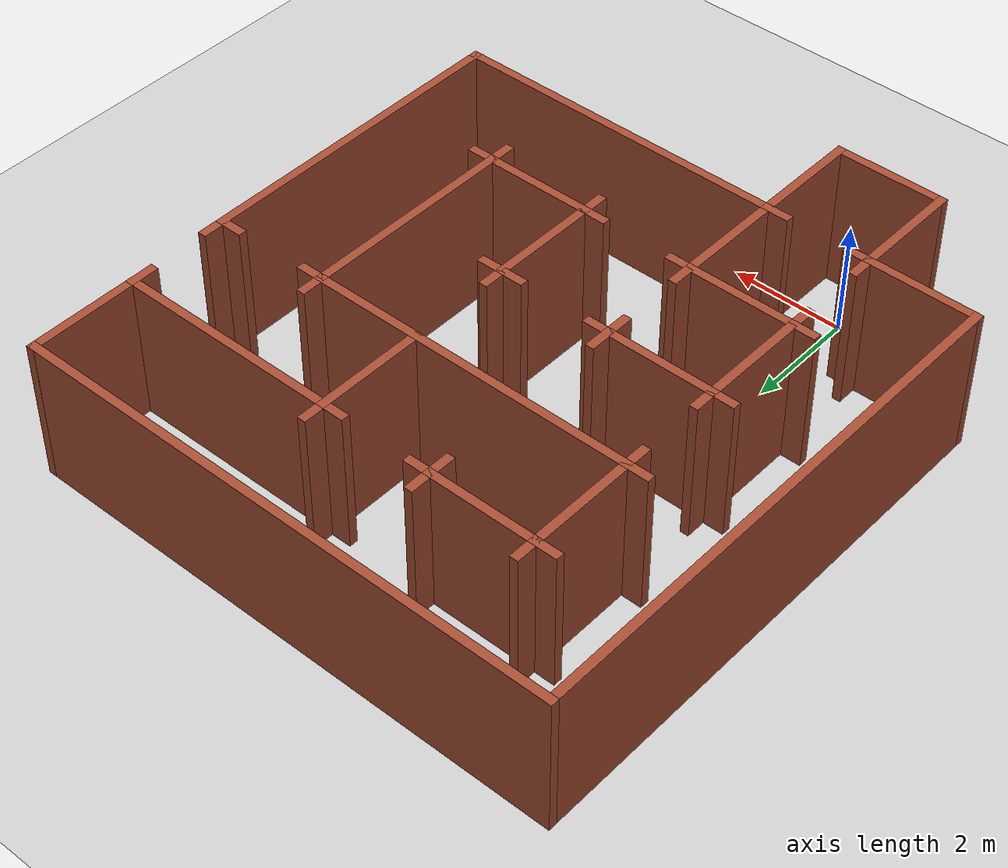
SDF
<?xml version="1.0"?>
<sdf version="1.6">
  <world name="default">

    <include>
      <uri>model://ground_plane</uri>
    </include>

    <include>
      <uri>model://sun</uri>
    </include>

    <scene>
      <shadows>false</shadows>
    </scene>

    <gui fullscreen='0'>
      <camera name='user_camera'>
        <pose frame=''>0.319654 -0.235002 9.29441 0 1.5138 0.009599</pose>
        <view_controller>orbit</view_controller>
        <projection_type>perspective</projection_type>
      </camera>
    </gui>

    <physics type="ode">
      <real_time_update_rate>1000.0</real_time_update_rate>
      <max_step_size>0.001</max_step_size>
      <real_time_factor>1</real_time_factor>
      <ode>
        <solver>
          <type>quick</type>
          <iters>150</iters>
          <precon_iters>0</precon_iters>
          <sor>1.400000</sor>
          <use_dynamic_moi_rescaling>1</use_dynamic_moi_rescaling>
        </solver>
        <constraints>
          <cfm>0.00001</cfm>
          <erp>0.2</erp>
          <contact_max_correcting_vel>2000.000000</contact_max_correcting_vel>
          <contact_surface_layer>0.01000</contact_surface_layer>
        </constraints>
      </ode>
    </physics>

    <model name="turtlebot3_enclosed_maze">
      <static>1</static>
      <include>
        <uri>model://turtlebot3_enclosed_maze</uri>
      </include>
    </model>

  </world>
</sdf>

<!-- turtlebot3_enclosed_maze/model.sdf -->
<sdf version='1.7'>
  <model name='Enclosed_Maze'>
    <pose>2 4.62209 0 0 -0 0</pose>
    <link name='Wall_109'>
      <collision name='Wall_109_Collision'>
        <geometry>
          <box>
            <size>0.5 0.15 2.5</size>
          </box>
        </geometry>
        <pose>0 0 1.25 0 -0 0</pose>
      </collision>
      <visual name='Wall_109_Visual'>
        <pose>0 0 1.25 0 -0 0</pose>
        <geometry>
          <box>
            <size>0.5 0.15 2.5</size>
          </box>
        </geometry>
        <material>
          <script>
            <uri>file://media/materials/scripts/gazebo.material</uri>
            <name>Gazebo/Bricks</name>
          </script>
          <ambient>1 1 1 1</ambient>
        </material>
        <meta>
          <layer>0</layer>
        </meta>
      </visual>
      <pose>-2.925 0.177915 0 0 -0 1.5708</pose>
    </link>
    <link name='Wall_113'>
      <collision name='Wall_113_Collision'>
        <geometry>
          <box>
            <size>0.5 0.15 2.5</size>
          </box>
        </geometry>
        <pose>0 0 1.25 0 -0 0</pose>
      </collision>
      <visual name='Wall_113_Visual'>
        <pose>0 0 1.25 0 -0 0</pose>
        <geometry>
          <box>
            <size>0.5 0.15 2.5</size>
          </box>
        </geometry>
        <material>
          <script>
            <uri>file://media/materials/scripts/gazebo.material</uri>
            <name>Gazebo/Bricks</name>
          </script>
          <ambient>1 1 1 1</ambient>
        </material>
        <meta>
          <layer>0</layer>
        </meta>
      </visual>
      <pose>-1.075 0.177915 0 0 -0 1.5708</pose>
    </link>
    <link name='Wall_115'>
      <collision name='Wall_115_Collision'>
        <geometry>
          <box>
            <size>0.5 0.15 2.5</size>
          </box>
        </geometry>
        <pose>0 0 1.25 0 -0 0</pose>
      </collision>
      <visual name='Wall_115_Visual'>
        <pose>0 0 1.25 0 -0 0</pose>
        <geometry>
          <box>
            <size>0.5 0.15 2.5</size>
          </box>
        </geometry>
        <material>
          <script>
            <uri>file://media/materials/scripts/gazebo.material</uri>
            <name>Gazebo/Bricks</name>
          </script>
          <ambient>1 1 1 1</ambient>
        </material>
        <meta>
          <layer>0</layer>
        </meta>
      </visual>
      <pose>-0.9 0.002915 0 0 -0 0</pose>
    </link>
    <link name='Wall_117'>
      <collision name='Wall_117_Collision'>
        <geometry>
          <box>
            <size>0.5 0.15 2.5</size>
          </box>
        </geometry>
        <pose>0 0 1.25 0 -0 0</pose>
      </collision>
      <visual name='Wall_117_Visual'>
        <pose>0 0 1.25 0 -0 0</pose>
        <geometry>
          <box>
            <size>0.5 0.15 2.5</size>
          </box>
        </geometry>
        <material>
          <script>
            <uri>file://media/materials/scripts/gazebo.material</uri>
            <name>Gazebo/Bricks</name>
          </script>
          <ambient>1 1 1 1</ambient>
        </material>
        <meta>
          <layer>0</layer>
        </meta>
      </visual>
      <pose>-1.075 -0.172085 0 0 -0 -1.5708</pose>
    </link>
    <link name='Wall_119'>
      <collision name='Wall_119_Collision'>
        <geometry>
          <box>
            <size>0.5 0.15 2.5</size>
          </box>
        </geometry>
        <pose>0 0 1.25 0 -0 0</pose>
      </collision>
      <visual name='Wall_119_Visual'>
        <pose>0 0 1.25 0 -0 0</pose>
        <geometry>
          <box>
            <size>0.5 0.15 2.5</size>
          </box>
        </geometry>
        <material>
          <script>
            <uri>file://media/materials/scripts/gazebo.material</uri>
            <name>Gazebo/Bricks</name>
          </script>
          <ambient>1 1 1 1</ambient>
        </material>
        <meta>
          <layer>0</layer>
        </meta>
      </visual>
      <pose>0.75 0.002915 0 0 -0 3.14159</pose>
    </link>
    <link name='Wall_121'>
      <collision name='Wall_121_Collision'>
        <geometry>
          <box>
            <size>0.5 0.15 2.5</size>
          </box>
        </geometry>
        <pose>0 0 1.25 0 -0 0</pose>
      </collision>
      <visual name='Wall_121_Visual'>
        <pose>0 0 1.25 0 -0 0</pose>
        <geometry>
          <box>
            <size>0.5 0.15 2.5</size>
          </box>
        </geometry>
        <material>
          <script>
            <uri>file://media/materials/scripts/gazebo.material</uri>
            <name>Gazebo/Bricks</name>
          </script>
          <ambient>1 1 1 1</ambient>
        </material>
        <meta>
          <layer>0</layer>
        </meta>
      </visual>
      <pose>0.925 0.177915 0 0 -0 1.5708</pose>
    </link>
    <link name='Wall_123'>
      <collision name='Wall_123_Collision'>
        <geometry>
          <box>
            <size>0.5 0.15 2.5</size>
          </box>
        </geometry>
        <pose>0 0 1.25 0 -0 0</pose>
      </collision>
      <visual name='Wall_123_Visual'>
        <pose>0 0 1.25 0 -0 0</pose>
        <geometry>
          <box>
            <size>0.5 0.15 2.5</size>
          </box>
        </geometry>
        <material>
          <script>
            <uri>file://media/materials/scripts/gazebo.material</uri>
            <name>Gazebo/Bricks</name>
          </script>
          <ambient>1 1 1 1</ambient>
        </material>
        <meta>
          <layer>0</layer>
        </meta>
      </visual>
      <pose>1.1 0.002915 0 0 -0 0</pose>
    </link>
    <link name='Wall_128'>
      <collision name='Wall_128_Collision'>
        <geometry>
          <box>
            <size>2 0.15 2.5</size>
          </box>
        </geometry>
        <pose>0 0 1.25 0 -0 0</pose>
      </collision>
      <visual name='Wall_128_Visual'>
        <pose>0 0 1.25 0 -0 0</pose>
        <geometry>
          <box>
            <size>2 0.15 2.5</size>
          </box>
        </geometry>
        <material>
          <script>
            <uri>file://media/materials/scripts/gazebo.material</uri>
            <name>Gazebo/Bricks</name>
          </script>
          <ambient>1 1 1 1</ambient>
        </material>
        <meta>
          <layer>0</layer>
        </meta>
      </visual>
      <pose>-2.925 2.77792 0 0 -0 -1.5708</pose>
    </link>
    <link name='Wall_129'>
      <collision name='Wall_129_Collision'>
        <geometry>
          <box>
            <size>5.85 0.15 2.5</size>
          </box>
        </geometry>
        <pose>0 0 1.25 0 -0 0</pose>
      </collision>
      <visual name='Wall_129_Visual'>
        <pose>0 0 1.25 0 -0 0</pose>
        <geometry>
          <box>
            <size>5.85 0.15 2.5</size>
          </box>
        </geometry>
        <material>
          <script>
            <uri>file://media/materials/scripts/gazebo.material</uri>
            <name>Gazebo/Bricks</name>
          </script>
          <ambient>1 1 1 1</ambient>
        </material>
        <meta>
          <layer>0</layer>
        </meta>
      </visual>
      <pose>-0.075 1.85292 0 0 -0 0</pose>
    </link>
    <link name='Wall_139'>
      <collision name='Wall_139_Collision'>
        <geometry>
          <box>
            <size>0.5 0.15 2.5</size>
          </box>
        </geometry>
        <pose>0 0 1.25 0 -0 0</pose>
      </collision>
      <visual name='Wall_139_Visual'>
        <pose>0 0 1.25 0 -0 0</pose>
        <geometry>
          <box>
            <size>0.5 0.15 2.5</size>
          </box>
        </geometry>
        <material>
          <script>
            <uri>file://media/materials/scripts/gazebo.material</uri>
            <name>Gazebo/Bricks</name>
          </script>
          <ambient>1 1 1 1</ambient>
        </material>
        <meta>
          <layer>0</layer>
        </meta>
      </visual>
      <pose>-2.925 -2.02209 0 0 -0 -1.5708</pose>
    </link>
    <link name='Wall_141'>
      <collision name='Wall_141_Collision'>
        <geometry>
          <box>
            <size>0.5 0.15 2.5</size>
          </box>
        </geometry>
        <pose>0 0 1.25 0 -0 0</pose>
      </collision>
      <visual name='Wall_141_Visual'>
        <pose>0 0 1.25 0 -0 0</pose>
        <geometry>
          <box>
            <size>0.5 0.15 2.5</size>
          </box>
        </geometry>
        <material>
          <script>
            <uri>file://media/materials/scripts/gazebo.material</uri>
            <name>Gazebo/Bricks</name>
          </script>
          <ambient>1 1 1 1</ambient>
        </material>
        <meta>
          <layer>0</layer>
        </meta>
      </visual>
      <pose>-1.25 -3.69708 0 0 -0 3.14159</pose>
    </link>
    <link name='Wall_143'>
      <collision name='Wall_143_Collision'>
        <geometry>
          <box>
            <size>0.5 0.15 2.5</size>
          </box>
        </geometry>
        <pose>0 0 1.25 0 -0 0</pose>
      </collision>
      <visual name='Wall_143_Visual'>
        <pose>0 0 1.25 0 -0 0</pose>
        <geometry>
          <box>
            <size>0.5 0.15 2.5</size>
          </box>
        </geometry>
        <material>
          <script>
            <uri>file://media/materials/scripts/gazebo.material</uri>
            <name>Gazebo/Bricks</name>
          </script>
          <ambient>1 1 1 1</ambient>
        </material>
        <meta>
          <layer>0</layer>
        </meta>
      </visual>
      <pose>-3.1 -1.84709 0 0 -0 3.14159</pose>
    </link>
    <link name='Wall_145'>
      <collision name='Wall_145_Collision'>
        <geometry>
          <box>
            <size>0.5 0.15 2.5</size>
          </box>
        </geometry>
        <pose>0 0 1.25 0 -0 0</pose>
      </collision>
      <visual name='Wall_145_Visual'>
        <pose>0 0 1.25 0 -0 0</pose>
        <geometry>
          <box>
            <size>0.5 0.15 2.5</size>
          </box>
        </geometry>
        <material>
          <script>
            <uri>file://media/materials/scripts/gazebo.material</uri>
            <name>Gazebo/Bricks</name>
          </script>
          <ambient>1 1 1 1</ambient>
        </material>
        <meta>
          <layer>0</layer>
        </meta>
      </visual>
      <pose>-3.1 0.002915 0 0 -0 3.14159</pose>
    </link>
    <link name='Wall_147'>
      <collision name='Wall_147_Collision'>
        <geometry>
          <box>
            <size>0.5 0.15 2.5</size>
          </box>
        </geometry>
        <pose>0 0 1.25 0 -0 0</pose>
      </collision>
      <visual name='Wall_147_Visual'>
        <pose>0 0 1.25 0 -0 0</pose>
        <geometry>
          <box>
            <size>0.5 0.15 2.5</size>
          </box>
        </geometry>
        <material>
          <script>
            <uri>file://media/materials/scripts/gazebo.material</uri>
            <name>Gazebo/Bricks</name>
          </script>
          <ambient>1 1 1 1</ambient>
        </material>
        <meta>
          <layer>0</layer>
        </meta>
      </visual>
      <pose>-3.1 1.85292 0 0 -0 3.14159</pose>
    </link>
    <link name='Wall_149'>
      <collision name='Wall_149_Collision'>
        <geometry>
          <box>
            <size>0.5 0.15 2.5</size>
          </box>
        </geometry>
        <pose>0 0 1.25 0 -0 0</pose>
      </collision>
      <visual name='Wall_149_Visual'>
        <pose>0 0 1.25 0 -0 0</pose>
        <geometry>
          <box>
            <size>0.5 0.15 2.5</size>
          </box>
        </geometry>
        <material>
          <script>
            <uri>file://media/materials/scripts/gazebo.material</uri>
            <name>Gazebo/Bricks</name>
          </script>
          <ambient>1 1 1 1</ambient>
        </material>
        <meta>
          <layer>0</layer>
        </meta>
      </visual>
      <pose>-3.1 3.70291 0 0 -0 3.14159</pose>
    </link>
    <link name='Wall_15'>
      <collision name='Wall_15_Collision'>
        <geometry>
          <box>
            <size>2 0.15 2.5</size>
          </box>
        </geometry>
        <pose>0 0 1.25 0 -0 0</pose>
      </collision>
      <visual name='Wall_15_Visual'>
        <pose>0 0 1.25 0 -0 0</pose>
        <geometry>
          <box>
            <size>2 0.15 2.5</size>
          </box>
        </geometry>
        <material>
          <script>
            <uri>file://media/materials/scripts/gazebo.material</uri>
            <name>Gazebo/Bricks</name>
          </script>
          <ambient>1 1 1 1</ambient>
        </material>
        <meta>
          <layer>0</layer>
        </meta>
      </visual>
      <pose>-3.85 -3.69708 0 0 -0 3.14159</pose>
    </link>
    <link name='Wall_151'>
      <collision name='Wall_151_Collision'>
        <geometry>
          <box>
            <size>0.5 0.15 2.5</size>
          </box>
        </geometry>
        <pose>0 0 1.25 0 -0 0</pose>
      </collision>
      <visual name='Wall_151_Visual'>
        <pose>0 0 1.25 0 -0 0</pose>
        <geometry>
          <box>
            <size>0.5 0.15 2.5</size>
          </box>
        </geometry>
        <material>
          <script>
            <uri>file://media/materials/scripts/gazebo.material</uri>
            <name>Gazebo/Bricks</name>
          </script>
          <ambient>1 1 1 1</ambient>
        </material>
        <meta>
          <layer>0</layer>
        </meta>
      </visual>
      <pose>-2.925 3.87791 0 0 -0 1.5708</pose>
    </link>
    <link name='Wall_153'>
      <collision name='Wall_153_Collision'>
        <geometry>
          <box>
            <size>0.5 0.15 2.5</size>
          </box>
        </geometry>
        <pose>0 0 1.25 0 -0 0</pose>
      </collision>
      <visual name='Wall_153_Visual'>
        <pose>0 0 1.25 0 -0 0</pose>
        <geometry>
          <box>
            <size>0.5 0.15 2.5</size>
          </box>
        </geometry>
        <material>
          <script>
            <uri>file://media/materials/scripts/gazebo.material</uri>
            <name>Gazebo/Bricks</name>
          </script>
          <ambient>1 1 1 1</ambient>
        </material>
        <meta>
          <layer>0</layer>
        </meta>
      </visual>
      <pose>-0.9 3.70291 0 0 -0 0</pose>
    </link>
    <link name='Wall_155'>
      <collision name='Wall_155_Collision'>
        <geometry>
          <box>
            <size>0.5 0.15 2.5</size>
          </box>
        </geometry>
        <pose>0 0 1.25 0 -0 0</pose>
      </collision>
      <visual name='Wall_155_Visual'>
        <pose>0 0 1.25 0 -0 0</pose>
        <geometry>
          <box>
            <size>0.5 0.15 2.5</size>
          </box>
        </geometry>
        <material>
          <script>
            <uri>file://media/materials/scripts/gazebo.material</uri>
            <name>Gazebo/Bricks</name>
          </script>
          <ambient>1 1 1 1</ambient>
        </material>
        <meta>
          <layer>0</layer>
        </meta>
      </visual>
      <pose>-1.075 3.87791 0 0 -0 1.5708</pose>
    </link>
    <link name='Wall_157'>
      <collision name='Wall_157_Collision'>
        <geometry>
          <box>
            <size>0.5 0.15 2.5</size>
          </box>
        </geometry>
        <pose>0 0 1.25 0 -0 0</pose>
      </collision>
      <visual name='Wall_157_Visual'>
        <pose>0 0 1.25 0 -0 0</pose>
        <geometry>
          <box>
            <size>0.5 0.15 2.5</size>
          </box>
        </geometry>
        <material>
          <script>
            <uri>file://media/materials/scripts/gazebo.material</uri>
            <name>Gazebo/Bricks</name>
          </script>
          <ambient>1 1 1 1</ambient>
        </material>
        <meta>
          <layer>0</layer>
        </meta>
      </visual>
      <pose>-1.075 3.52792 0 0 -0 -1.5708</pose>
    </link>
    <link name='Wall_159'>
      <collision name='Wall_159_Collision'>
        <geometry>
          <box>
            <size>0.5 0.15 2.5</size>
          </box>
        </geometry>
        <pose>0 0 1.25 0 -0 0</pose>
      </collision>
      <visual name='Wall_159_Visual'>
        <pose>0 0 1.25 0 -0 0</pose>
        <geometry>
          <box>
            <size>0.5 0.15 2.5</size>
          </box>
        </geometry>
        <material>
          <script>
            <uri>file://media/materials/scripts/gazebo.material</uri>
            <name>Gazebo/Bricks</name>
          </script>
          <ambient>1 1 1 1</ambient>
        </material>
        <meta>
          <layer>0</layer>
        </meta>
      </visual>
      <pose>-2.925 1.67792 0 0 -0 -1.5708</pose>
    </link>
    <link name='Wall_161'>
      <collision name='Wall_161_Collision'>
        <geometry>
          <box>
            <size>0.5 0.15 2.5</size>
          </box>
        </geometry>
        <pose>0 0 1.25 0 -0 0</pose>
      </collision>
      <visual name='Wall_161_Visual'>
        <pose>0 0 1.25 0 -0 0</pose>
        <geometry>
          <box>
            <size>0.5 0.15 2.5</size>
          </box>
        </geometry>
        <material>
          <script>
            <uri>file://media/materials/scripts/gazebo.material</uri>
            <name>Gazebo/Bricks</name>
          </script>
          <ambient>1 1 1 1</ambient>
        </material>
        <meta>
          <layer>0</layer>
        </meta>
      </visual>
      <pose>0.908 3.87192 0 0 -0 1.5708</pose>
    </link>
    <link name='Wall_163'>
      <collision name='Wall_163_Collision'>
        <geometry>
          <box>
            <size>0.5 0.15 2.5</size>
          </box>
        </geometry>
        <pose>0 0 1.25 0 -0 0</pose>
      </collision>
      <visual name='Wall_163_Visual'>
        <pose>0 0 1.25 0 -0 0</pose>
        <geometry>
          <box>
            <size>0.5 0.15 2.5</size>
          </box>
        </geometry>
        <material>
          <script>
            <uri>file://media/materials/scripts/gazebo.material</uri>
            <name>Gazebo/Bricks</name>
          </script>
          <ambient>1 1 1 1</ambient>
        </material>
        <meta>
          <layer>0</layer>
        </meta>
      </visual>
      <pose>0.733 3.69692 0 0 -0 3.14159</pose>
    </link>
    <link name='Wall_165'>
      <collision name='Wall_165_Collision'>
        <geometry>
          <box>
            <size>0.5 0.15 2.5</size>
          </box>
        </geometry>
        <pose>0 0 1.25 0 -0 0</pose>
      </collision>
      <visual name='Wall_165_Visual'>
        <pose>0 0 1.25 0 -0 0</pose>
        <geometry>
          <box>
            <size>0.5 0.15 2.5</size>
          </box>
        </geometry>
        <material>
          <script>
            <uri>file://media/materials/scripts/gazebo.material</uri>
            <name>Gazebo/Bricks</name>
          </script>
          <ambient>1 1 1 1</ambient>
        </material>
        <meta>
          <layer>0</layer>
        </meta>
      </visual>
      <pose>-1.075 -1.67209 0 0 -0 1.5708</pose>
    </link>
    <link name='Wall_167'>
      <collision name='Wall_167_Collision'>
        <geometry>
          <box>
            <size>0.5 0.15 2.5</size>
          </box>
        </geometry>
        <pose>0 0 1.25 0 -0 0</pose>
      </collision>
      <visual name='Wall_167_Visual'>
        <pose>0 0 1.25 0 -0 0</pose>
        <geometry>
          <box>
            <size>0.5 0.15 2.5</size>
          </box>
        </geometry>
        <material>
          <script>
            <uri>file://media/materials/scripts/gazebo.material</uri>
            <name>Gazebo/Bricks</name>
          </script>
          <ambient>1 1 1 1</ambient>
        </material>
        <meta>
          <layer>0</layer>
        </meta>
      </visual>
      <pose>-0.9 -1.84709 0 0 -0 0</pose>
    </link>
    <link name='Wall_169'>
      <collision name='Wall_169_Collision'>
        <geometry>
          <box>
            <size>0.5 0.15 2.5</size>
          </box>
        </geometry>
        <pose>0 0 1.25 0 -0 0</pose>
      </collision>
      <visual name='Wall_169_Visual'>
        <pose>0 0 1.25 0 -0 0</pose>
        <geometry>
          <box>
            <size>0.5 0.15 2.5</size>
          </box>
        </geometry>
        <material>
          <script>
            <uri>file://media/materials/scripts/gazebo.material</uri>
            <name>Gazebo/Bricks</name>
          </script>
          <ambient>1 1 1 1</ambient>
        </material>
        <meta>
          <layer>0</layer>
        </meta>
      </visual>
      <pose>0.75 -1.84709 0 0 -0 3.14159</pose>
    </link>
    <link name='Wall_171'>
      <collision name='Wall_171_Collision'>
        <geometry>
          <box>
            <size>0.5 0.15 2.5</size>
          </box>
        </geometry>
        <pose>0 0 1.25 0 -0 0</pose>
      </collision>
      <visual name='Wall_171_Visual'>
        <pose>0 0 1.25 0 -0 0</pose>
        <geometry>
          <box>
            <size>0.5 0.15 2.5</size>
          </box>
        </geometry>
        <material>
          <script>
            <uri>file://media/materials/scripts/gazebo.material</uri>
            <name>Gazebo/Bricks</name>
          </script>
          <ambient>1 1 1 1</ambient>
        </material>
        <meta>
          <layer>0</layer>
        </meta>
      </visual>
      <pose>0.925 -2.02209 0 0 -0 -1.5708</pose>
    </link>
    <link name='Wall_173'>
      <collision name='Wall_173_Collision'>
        <geometry>
          <box>
            <size>0.5 0.15 2.5</size>
          </box>
        </geometry>
        <pose>0 0 1.25 0 -0 0</pose>
      </collision>
      <visual name='Wall_173_Visual'>
        <pose>0 0 1.25 0 -0 0</pose>
        <geometry>
          <box>
            <size>0.5 0.15 2.5</size>
          </box>
        </geometry>
        <material>
          <script>
            <uri>file://media/materials/scripts/gazebo.material</uri>
            <name>Gazebo/Bricks</name>
          </script>
          <ambient>1 1 1 1</ambient>
        </material>
        <meta>
          <layer>0</layer>
        </meta>
      </visual>
      <pose>2.775 -2.02209 0 0 -0 -1.5708</pose>
    </link>
    <link name='Wall_175'>
      <collision name='Wall_175_Collision'>
        <geometry>
          <box>
            <size>0.5 0.15 2.5</size>
          </box>
        </geometry>
        <pose>0 0 1.25 0 -0 0</pose>
      </collision>
      <visual name='Wall_175_Visual'>
        <pose>0 0 1.25 0 -0 0</pose>
        <geometry>
          <box>
            <size>0.5 0.15 2.5</size>
          </box>
        </geometry>
        <material>
          <script>
            <uri>file://media/materials/scripts/gazebo.material</uri>
            <name>Gazebo/Bricks</name>
          </script>
          <ambient>1 1 1 1</ambient>
        </material>
        <meta>
          <layer>0</layer>
        </meta>
      </visual>
      <pose>2.95 -1.84709 0 0 -0 0</pose>
    </link>
    <link name='Wall_177'>
      <collision name='Wall_177_Collision'>
        <geometry>
          <box>
            <size>0.5 0.15 2.5</size>
          </box>
        </geometry>
        <pose>0 0 1.25 0 -0 0</pose>
      </collision>
      <visual name='Wall_177_Visual'>
        <pose>0 0 1.25 0 -0 0</pose>
        <geometry>
          <box>
            <size>0.5 0.15 2.5</size>
          </box>
        </geometry>
        <material>
          <script>
            <uri>file://media/materials/scripts/gazebo.material</uri>
            <name>Gazebo/Bricks</name>
          </script>
          <ambient>1 1 1 1</ambient>
        </material>
        <meta>
          <layer>0</layer>
        </meta>
      </visual>
      <pose>2.775 2.02792 0 0 -0 1.5708</pose>
    </link>
    <link name='Wall_179'>
      <collision name='Wall_179_Collision'>
        <geometry>
          <box>
            <size>0.5 0.15 2.5</size>
          </box>
        </geometry>
        <pose>0 0 1.25 0 -0 0</pose>
      </collision>
      <visual name='Wall_179_Visual'>
        <pose>0 0 1.25 0 -0 0</pose>
        <geometry>
          <box>
            <size>0.5 0.15 2.5</size>
          </box>
        </geometry>
        <material>
          <script>
            <uri>file://media/materials/scripts/gazebo.material</uri>
            <name>Gazebo/Bricks</name>
          </script>
          <ambient>1 1 1 1</ambient>
        </material>
        <meta>
          <layer>0</layer>
        </meta>
      </visual>
      <pose>2.95 1.85292 0 0 -0 0</pose>
    </link>
    <link name='Wall_18'>
      <collision name='Wall_18_Collision'>
        <geometry>
          <box>
            <size>6 0.15 2.5</size>
          </box>
        </geometry>
        <pose>0 0 1.25 0 -0 0</pose>
      </collision>
      <visual name='Wall_18_Visual'>
        <pose>0 0 1.25 0 -0 0</pose>
        <geometry>
          <box>
            <size>6 0.15 2.5</size>
          </box>
        </geometry>
        <material>
          <script>
            <uri>file://media/materials/scripts/gazebo.material</uri>
            <name>Gazebo/Bricks</name>
          </script>
          <ambient>1 1 1 1</ambient>
        </material>
        <meta>
          <layer>0</layer>
        </meta>
      </visual>
      <pose>1.85 -3.69708 0 0 -0 0</pose>
    </link>
    <link name='Wall_181'>
      <collision name='Wall_181_Collision'>
        <geometry>
          <box>
            <size>0.5 0.15 2.5</size>
          </box>
        </geometry>
        <pose>0 0 1.25 0 -0 0</pose>
      </collision>
      <visual name='Wall_181_Visual'>
        <pose>0 0 1.25 0 -0 0</pose>
        <geometry>
          <box>
            <size>0.5 0.15 2.5</size>
          </box>
        </geometry>
        <material>
          <script>
            <uri>file://media/materials/scripts/gazebo.material</uri>
            <name>Gazebo/Bricks</name>
          </script>
          <ambient>1 1 1 1</ambient>
        </material>
        <meta>
          <layer>0</layer>
        </meta>
      </visual>
      <pose>4.6 1.90291 0 0 -0 3.14159</pose>
    </link>
    <link name='Wall_183'>
      <collision name='Wall_183_Collision'>
        <geometry>
          <box>
            <size>0.5 0.15 2.5</size>
          </box>
        </geometry>
        <pose>0 0 1.25 0 -0 0</pose>
      </collision>
      <visual name='Wall_183_Visual'>
        <pose>0 0 1.25 0 -0 0</pose>
        <geometry>
          <box>
            <size>0.5 0.15 2.5</size>
          </box>
        </geometry>
        <material>
          <script>
            <uri>file://media/materials/scripts/gazebo.material</uri>
            <name>Gazebo/Bricks</name>
          </script>
          <ambient>1 1 1 1</ambient>
        </material>
        <meta>
          <layer>0</layer>
        </meta>
      </visual>
      <pose>4.75771 3.52228 0 0 -0 -1.5708</pose>
    </link>
    <link name='Wall_185'>
      <collision name='Wall_185_Collision'>
        <geometry>
          <box>
            <size>0.5 0.15 2.5</size>
          </box>
        </geometry>
        <pose>0 0 1.25 0 -0 0</pose>
      </collision>
      <visual name='Wall_185_Visual'>
        <pose>0 0 1.25 0 -0 0</pose>
        <geometry>
          <box>
            <size>0.5 0.15 2.5</size>
          </box>
        </geometry>
        <material>
          <script>
            <uri>file://media/materials/scripts/gazebo.material</uri>
            <name>Gazebo/Bricks</name>
          </script>
          <ambient>1 1 1 1</ambient>
        </material>
        <meta>
          <layer>0</layer>
        </meta>
      </visual>
      <pose>4.775 2.07791 0 0 -0 1.5708</pose>
    </link>
    <link name='Wall_20'>
      <collision name='Wall_20_Collision'>
        <geometry>
          <box>
            <size>5.75 0.15 2.5</size>
          </box>
        </geometry>
        <pose>0 0 1.25 0 -0 0</pose>
      </collision>
      <visual name='Wall_20_Visual'>
        <pose>0 0 1.25 0 -0 0</pose>
        <geometry>
          <box>
            <size>5.75 0.15 2.5</size>
          </box>
        </geometry>
        <material>
          <script>
            <uri>file://media/materials/scripts/gazebo.material</uri>
            <name>Gazebo/Bricks</name>
          </script>
          <ambient>1 1 1 1</ambient>
        </material>
        <meta>
          <layer>0</layer>
        </meta>
      </visual>
      <pose>4.775 -0.897085 0 0 -0 1.5708</pose>
    </link>
    <link name='Wall_28'>
      <collision name='Wall_28_Collision'>
        <geometry>
          <box>
            <size>2.00005 0.15 2.5</size>
          </box>
        </geometry>
        <pose>0 0 1.25 0 -0 0</pose>
      </collision>
      <visual name='Wall_28_Visual'>
        <pose>0 0 1.25 0 -0 0</pose>
        <geometry>
          <box>
            <size>2.00005 0.15 2.5</size>
          </box>
        </geometry>
        <material>
          <script>
            <uri>file://media/materials/scripts/gazebo.material</uri>
            <name>Gazebo/Bricks</name>
          </script>
          <ambient>1 1 1 1</ambient>
        </material>
        <meta>
          <layer>0</layer>
        </meta>
      </visual>
      <pose>-1.075 -2.77209 0 0 -0 1.5708</pose>
    </link>
    <link name='Wall_29'>
      <collision name='Wall_29_Collision'>
        <geometry>
          <box>
            <size>2 0.15 2.5</size>
          </box>
        </geometry>
        <pose>0 0 1.25 0 -0 0</pose>
      </collision>
      <visual name='Wall_29_Visual'>
        <pose>0 0 1.25 0 -0 0</pose>
        <geometry>
          <box>
            <size>2 0.15 2.5</size>
          </box>
        </geometry>
        <material>
          <script>
            <uri>file://media/materials/scripts/gazebo.material</uri>
            <name>Gazebo/Bricks</name>
          </script>
          <ambient>1 1 1 1</ambient>
        </material>
        <meta>
          <layer>0</layer>
        </meta>
      </visual>
      <pose>-2 -1.84709 0 0 -0 3.14159</pose>
    </link>
    <link name='Wall_31'>
      <collision name='Wall_31_Collision'>
        <geometry>
          <box>
            <size>2 0.15 2.5</size>
          </box>
        </geometry>
        <pose>0 0 1.25 0 -0 0</pose>
      </collision>
      <visual name='Wall_31_Visual'>
        <pose>0 0 1.25 0 -0 0</pose>
        <geometry>
          <box>
            <size>2 0.15 2.5</size>
          </box>
        </geometry>
        <material>
          <script>
            <uri>file://media/materials/scripts/gazebo.material</uri>
            <name>Gazebo/Bricks</name>
          </script>
          <ambient>1 1 1 1</ambient>
        </material>
        <meta>
          <layer>0</layer>
        </meta>
      </visual>
      <pose>-2.925 -0.922085 0 0 -0 1.5708</pose>
    </link>
    <link name='Wall_37'>
      <collision name='Wall_37_Collision'>
        <geometry>
          <box>
            <size>2 0.15 2.5</size>
          </box>
        </geometry>
        <pose>0 0 1.25 0 -0 0</pose>
      </collision>
      <visual name='Wall_37_Visual'>
        <pose>0 0 1.25 0 -0 0</pose>
        <geometry>
          <box>
            <size>2 0.15 2.5</size>
          </box>
        </geometry>
        <material>
          <script>
            <uri>file://media/materials/scripts/gazebo.material</uri>
            <name>Gazebo/Bricks</name>
          </script>
          <ambient>1 1 1 1</ambient>
        </material>
        <meta>
          <layer>0</layer>
        </meta>
      </visual>
      <pose>0.925 -0.922085 0 0 -0 -1.5708</pose>
    </link>
    <link name='Wall_4'>
      <collision name='Wall_4_Collision'>
        <geometry>
          <box>
            <size>2 0.15 2.5</size>
          </box>
        </geometry>
        <pose>0 0 1.25 0 -0 0</pose>
      </collision>
      <visual name='Wall_4_Visual'>
        <pose>0 0 1.25 0 -0 0</pose>
        <geometry>
          <box>
            <size>2 0.15 2.5</size>
          </box>
        </geometry>
        <material>
          <script>
            <uri>file://media/materials/scripts/gazebo.material</uri>
            <name>Gazebo/Bricks</name>
          </script>
          <ambient>1 1 1 1</ambient>
        </material>
        <meta>
          <layer>0</layer>
        </meta>
      </visual>
      <pose>-2.925 -4.62209 0 0 -0 1.5708</pose>
    </link>
    <link name='Wall_52'>
      <collision name='Wall_52_Collision'>
        <geometry>
          <box>
            <size>2 0.15 2.5</size>
          </box>
        </geometry>
        <pose>0 0 1.25 0 -0 0</pose>
      </collision>
      <visual name='Wall_52_Visual'>
        <pose>0 0 1.25 0 -0 0</pose>
        <geometry>
          <box>
            <size>2 0.15 2.5</size>
          </box>
        </geometry>
        <material>
          <script>
            <uri>file://media/materials/scripts/gazebo.material</uri>
            <name>Gazebo/Bricks</name>
          </script>
          <ambient>1 1 1 1</ambient>
        </material>
        <meta>
          <layer>0</layer>
        </meta>
      </visual>
      <pose>1.85 -1.84709 0 0 -0 0</pose>
    </link>
    <link name='Wall_53'>
      <collision name='Wall_53_Collision'>
        <geometry>
          <box>
            <size>3.85 0.15 2.5</size>
          </box>
        </geometry>
        <pose>0 0 1.25 0 -0 0</pose>
      </collision>
      <visual name='Wall_53_Visual'>
        <pose>0 0 1.25 0 -0 0</pose>
        <geometry>
          <box>
            <size>3.85 0.15 2.5</size>
          </box>
        </geometry>
        <material>
          <script>
            <uri>file://media/materials/scripts/gazebo.material</uri>
            <name>Gazebo/Bricks</name>
          </script>
          <ambient>1 1 1 1</ambient>
        </material>
        <meta>
          <layer>0</layer>
        </meta>
      </visual>
      <pose>2.775 0.002915 0 0 -0 1.5708</pose>
    </link>
    <link name='Wall_55'>
      <collision name='Wall_55_Collision'>
        <geometry>
          <box>
            <size>2 0.15 2.5</size>
          </box>
        </geometry>
        <pose>0 0 1.25 0 -0 0</pose>
      </collision>
      <visual name='Wall_55_Visual'>
        <pose>0 0 1.25 0 -0 0</pose>
        <geometry>
          <box>
            <size>2 0.15 2.5</size>
          </box>
        </geometry>
        <material>
          <script>
            <uri>file://media/materials/scripts/gazebo.material</uri>
            <name>Gazebo/Bricks</name>
          </script>
          <ambient>1 1 1 1</ambient>
        </material>
        <meta>
          <layer>0</layer>
        </meta>
      </visual>
      <pose>-2 0.002915 0 0 -0 0</pose>
    </link>
    <link name='Wall_6'>
      <collision name='Wall_6_Collision'>
        <geometry>
          <box>
            <size>2 0.15 2.5</size>
          </box>
        </geometry>
        <pose>0 0 1.25 0 -0 0</pose>
      </collision>
      <visual name='Wall_6_Visual'>
        <pose>0 0 1.25 0 -0 0</pose>
        <geometry>
          <box>
            <size>2 0.15 2.5</size>
          </box>
        </geometry>
        <material>
          <script>
            <uri>file://media/materials/scripts/gazebo.material</uri>
            <name>Gazebo/Bricks</name>
          </script>
          <ambient>1 1 1 1</ambient>
        </material>
        <meta>
          <layer>0</layer>
        </meta>
      </visual>
      <pose>-2 -5.54709 0 0 -0 0</pose>
    </link>
    <link name='Wall_7'>
      <collision name='Wall_7_Collision'>
        <geometry>
          <box>
            <size>2.00005 0.15 2.5</size>
          </box>
        </geometry>
        <pose>0 0 1.25 0 -0 0</pose>
      </collision>
      <visual name='Wall_7_Visual'>
        <pose>0 0 1.25 0 -0 0</pose>
        <geometry>
          <box>
            <size>2.00005 0.15 2.5</size>
          </box>
        </geometry>
        <material>
          <script>
            <uri>file://media/materials/scripts/gazebo.material</uri>
            <name>Gazebo/Bricks</name>
          </script>
          <ambient>1 1 1 1</ambient>
        </material>
        <meta>
          <layer>0</layer>
        </meta>
      </visual>
      <pose>-1.075 -4.62209 0 0 -0 1.5708</pose>
    </link>
    <link name='Wall_74'>
      <collision name='Wall_74_Collision'>
        <geometry>
          <box>
            <size>1.994 0.15 2.5</size>
          </box>
        </geometry>
        <pose>0 0 1.25 0 -0 0</pose>
      </collision>
      <visual name='Wall_74_Visual'>
        <pose>0 0 1.25 0 -0 0</pose>
        <geometry>
          <box>
            <size>1.994 0.15 2.5</size>
          </box>
        </geometry>
        <material>
          <script>
            <uri>file://media/materials/scripts/gazebo.material</uri>
            <name>Gazebo/Bricks</name>
          </script>
          <ambient>1 1 1 1</ambient>
        </material>
        <meta>
          <layer>0</layer>
        </meta>
      </visual>
      <pose>0.908 2.77492 0 0 -0 -1.5708</pose>
    </link>
    <link name='Wall_78'>
      <collision name='Wall_78_Collision'>
        <geometry>
          <box>
            <size>2 0.15 2.5</size>
          </box>
        </geometry>
        <pose>0 0 1.25 0 -0 0</pose>
      </collision>
      <visual name='Wall_78_Visual'>
        <pose>0 0 1.25 0 -0 0</pose>
        <geometry>
          <box>
            <size>2 0.15 2.5</size>
          </box>
        </geometry>
        <material>
          <script>
            <uri>file://media/materials/scripts/gazebo.material</uri>
            <name>Gazebo/Bricks</name>
          </script>
          <ambient>1 1 1 1</ambient>
        </material>
        <meta>
          <layer>0</layer>
        </meta>
      </visual>
      <pose>-2 3.70291 0 0 -0 0</pose>
    </link>
    <link name='Wall_80'>
      <collision name='Wall_80_Collision'>
        <geometry>
          <box>
            <size>4 0.15 2.5</size>
          </box>
        </geometry>
        <pose>0 0 1.25 0 -0 0</pose>
      </collision>
      <visual name='Wall_80_Visual'>
        <pose>0 0 1.25 0 -0 0</pose>
        <geometry>
          <box>
            <size>4 0.15 2.5</size>
          </box>
        </geometry>
        <material>
          <script>
            <uri>file://media/materials/scripts/gazebo.material</uri>
            <name>Gazebo/Bricks</name>
          </script>
          <ambient>1 1 1 1</ambient>
        </material>
        <meta>
          <layer>0</layer>
        </meta>
      </visual>
      <pose>2.83285 3.6971 0 0 -0 9.4e-05</pose>
    </link>
    <link name='Wall_82'>
      <collision name='Wall_82_Collision'>
        <geometry>
          <box>
            <size>2 0.15 2.5</size>
          </box>
        </geometry>
        <pose>0 0 1.25 0 -0 0</pose>
      </collision>
      <visual name='Wall_82_Visual'>
        <pose>0 0 1.25 0 -0 0</pose>
        <geometry>
          <box>
            <size>2 0.15 2.5</size>
          </box>
        </geometry>
        <material>
          <script>
            <uri>file://media/materials/scripts/gazebo.material</uri>
            <name>Gazebo/Bricks</name>
          </script>
          <ambient>1 1 1 1</ambient>
        </material>
        <meta>
          <layer>0</layer>
        </meta>
      </visual>
      <pose>4.75785 4.6221 0 0 -0 1.57064</pose>
    </link>
    <link name='Wall_85'>
      <collision name='Wall_85_Collision'>
        <geometry>
          <box>
            <size>9.25 0.15 2.5</size>
          </box>
        </geometry>
        <pose>0 0 1.25 0 -0 0</pose>
      </collision>
      <visual name='Wall_85_Visual'>
        <pose>0 0 1.25 0 -0 0</pose>
        <geometry>
          <box>
            <size>9.25 0.15 2.5</size>
          </box>
        </geometry>
        <material>
          <script>
            <uri>file://media/materials/scripts/gazebo.material</uri>
            <name>Gazebo/Bricks</name>
          </script>
          <ambient>1 1 1 1</ambient>
        </material>
        <meta>
          <layer>0</layer>
        </meta>
      </visual>
      <pose>-4.775 0.852915 0 0 -0 1.5708</pose>
    </link>
    <link name='Wall_87'>
      <collision name='Wall_87_Collision'>
        <geometry>
          <box>
            <size>9.683 0.15 2.5</size>
          </box>
        </geometry>
        <pose>0 0 1.25 0 -0 0</pose>
      </collision>
      <visual name='Wall_87_Visual'>
        <pose>0 0 1.25 0 -0 0</pose>
        <geometry>
          <box>
            <size>9.683 0.15 2.5</size>
          </box>
        </geometry>
        <material>
          <script>
            <uri>file://media/materials/scripts/gazebo.material</uri>
            <name>Gazebo/Bricks</name>
          </script>
          <ambient>1 1 1 1</ambient>
        </material>
        <meta>
          <layer>0</layer>
        </meta>
      </visual>
      <pose>-0.0085 5.54692 0 0 -0 3.14159</pose>
    </link>
    <link name='Wall_93'>
      <collision name='Wall_93_Collision'>
        <geometry>
          <box>
            <size>0.5 0.15 2.5</size>
          </box>
        </geometry>
        <pose>0 0 1.25 0 -0 0</pose>
      </collision>
      <visual name='Wall_93_Visual'>
        <pose>0 0 1.25 0 -0 0</pose>
        <geometry>
          <box>
            <size>0.5 0.15 2.5</size>
          </box>
        </geometry>
        <material>
          <script>
            <uri>file://media/materials/scripts/gazebo.material</uri>
            <name>Gazebo/Bricks</name>
          </script>
          <ambient>1 1 1 1</ambient>
        </material>
        <meta>
          <layer>0</layer>
        </meta>
      </visual>
      <pose>-2.75 -3.69708 0 0 -0 0</pose>
    </link>
    <link name='Wall_95'>
      <collision name='Wall_95_Collision'>
        <geometry>
          <box>
            <size>0.5 0.15 2.5</size>
          </box>
        </geometry>
        <pose>0 0 1.25 0 -0 0</pose>
      </collision>
      <visual name='Wall_95_Visual'>
        <pose>0 0 1.25 0 -0 0</pose>
        <geometry>
          <box>
            <size>0.5 0.15 2.5</size>
          </box>
        </geometry>
        <material>
          <script>
            <uri>file://media/materials/scripts/gazebo.material</uri>
            <name>Gazebo/Bricks</name>
          </script>
          <ambient>1 1 1 1</ambient>
        </material>
        <meta>
          <layer>0</layer>
        </meta>
      </visual>
      <pose>-2.925 -3.52209 0 0 -0 1.5708</pose>
    </link>
    <link name='link_0'>
      <inertial>
        <mass>1</mass>
        <inertia>
          <ixx>0.166667</ixx>
          <ixy>0</ixy>
          <ixz>0</ixz>
          <iyy>0.166667</iyy>
          <iyz>0</iyz>
          <izz>0.166667</izz>
        </inertia>
        <pose>3 1.4 0 0 -0 0</pose>
      </inertial>
      <pose>3 1.4 0 0 -0 0</pose>
      <gravity>1</gravity>
      <self_collide>0</self_collide>
      <kinematic>0</kinematic>
      <enable_wind>0</enable_wind>
      <visual name='visual'>
        <pose>3 1.4 0 0 -0 0</pose>
        <geometry>
          <box>
            <size>0.25 0.75 0.5</size>
          </box>
        </geometry>
        <material>
          <lighting>1</lighting>
          <script>
            <uri>file://media/materials/scripts/gazebo.material</uri>
            <name>Gazebo/Green</name>
          </script>
          <shader type='pixel'>
            <normal_map>__default__</normal_map>
          </shader>
          <ambient>0 1 0 1</ambient>
          <diffuse>0 1 0 1</diffuse>
          <specular>0.01 0.01 0.01 1</specular>
          <emissive>0 0 0 1</emissive>
        </material>
        <transparency>0</transparency>
        <cast_shadows>1</cast_shadows>
      </visual>
      <collision name='collision'>
        <laser_retro>0</laser_retro>
        <max_contacts>10</max_contacts>
        <pose>3 1.4 0 0 -0 0</pose>
        <geometry>
          <box>
            <size>0.25 0.75 0.5</size>
          </box>
        </geometry>
        <surface>
          <friction>
            <ode>
              <mu>1</mu>
              <mu2>1</mu2>
              <fdir1>0 0 0</fdir1>
              <slip1>0</slip1>
              <slip2>0</slip2>
            </ode>
            <torsional>
              <coefficient>1</coefficient>
              <patch_radius>0</patch_radius>
              <surface_radius>0</surface_radius>
              <use_patch_radius>1</use_patch_radius>
              <ode>
                <slip>0</slip>
              </ode>
            </torsional>
          </friction>
          <bounce>
            <restitution_coefficient>0</restitution_coefficient>
            <threshold>1e+06</threshold>
          </bounce>
          <contact>
            <collide_without_contact>0</collide_without_contact>
            <collide_without_contact_bitmask>1</collide_without_contact_bitmask>
            <collide_bitmask>1</collide_bitmask>
            <ode>
              <soft_cfm>0</soft_cfm>
              <soft_erp>0.2</soft_erp>
              <kp>1e+13</kp>
              <kd>1</kd>
              <max_vel>0.01</max_vel>
              <min_depth>0</min_depth>
            </ode>
            <bullet>
              <split_impulse>1</split_impulse>
              <split_impulse_penetration_threshold>-0.01</split_impulse_penetration_threshold>
              <soft_cfm>0</soft_cfm>
              <soft_erp>0.2</soft_erp>
              <kp>1e+13</kp>
              <kd>1</kd>
            </bullet>
          </contact>
        </surface>
      </collision>
    </link>
    <static>1</static>
  </model>
</sdf>
